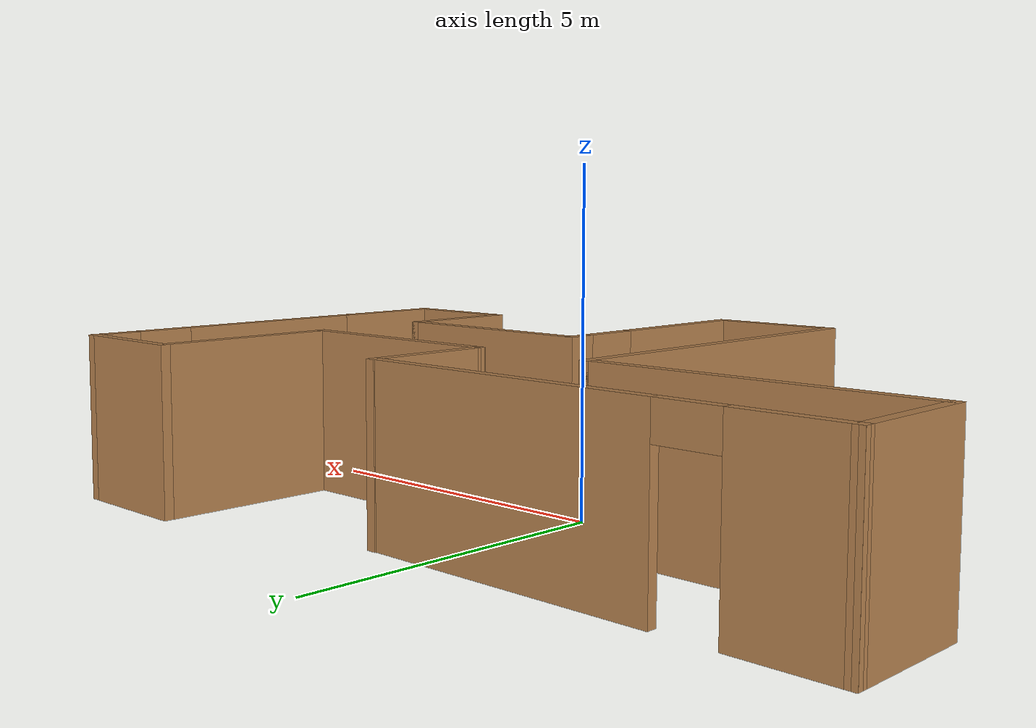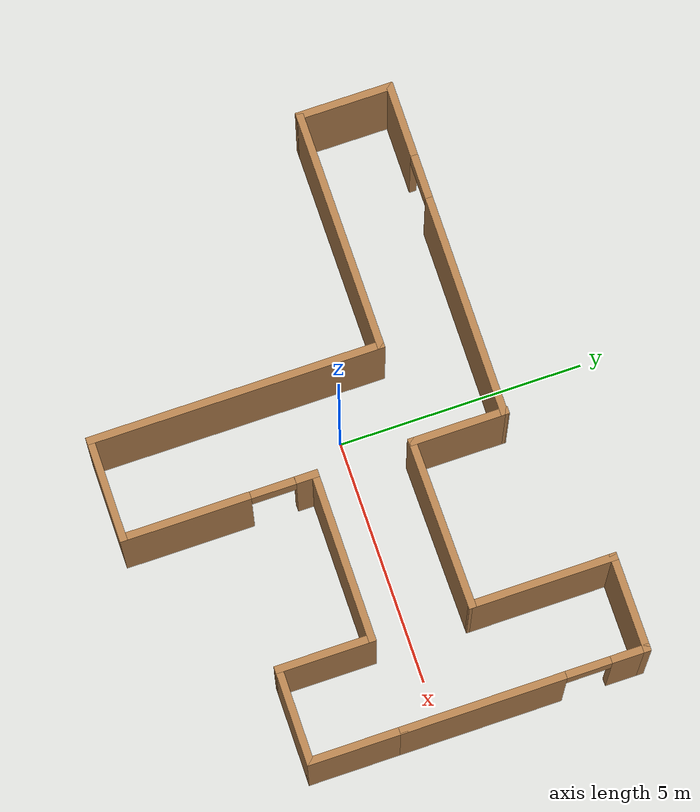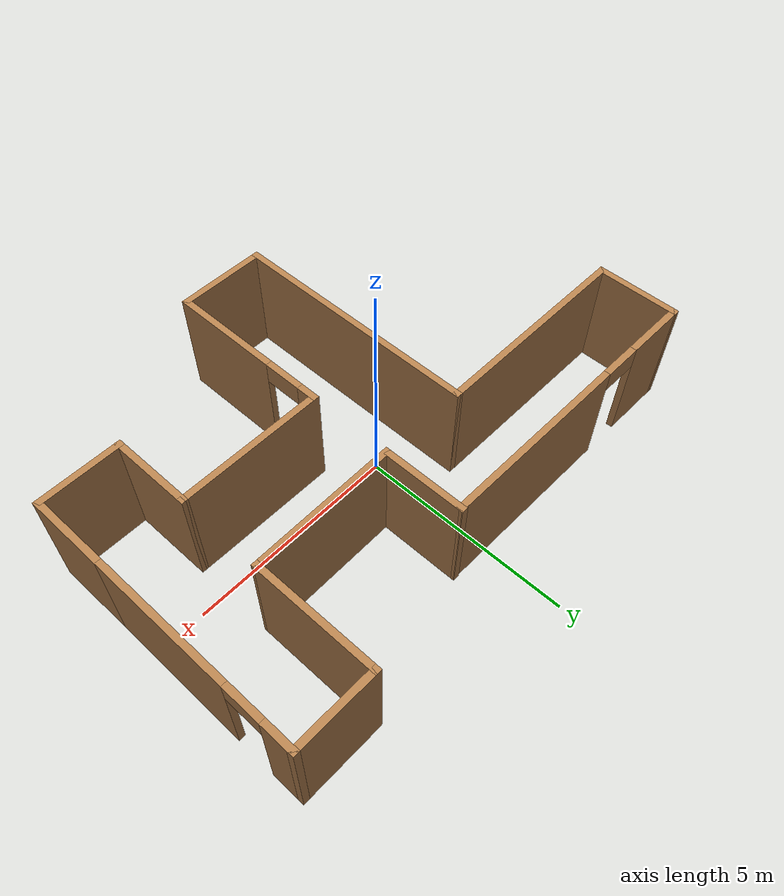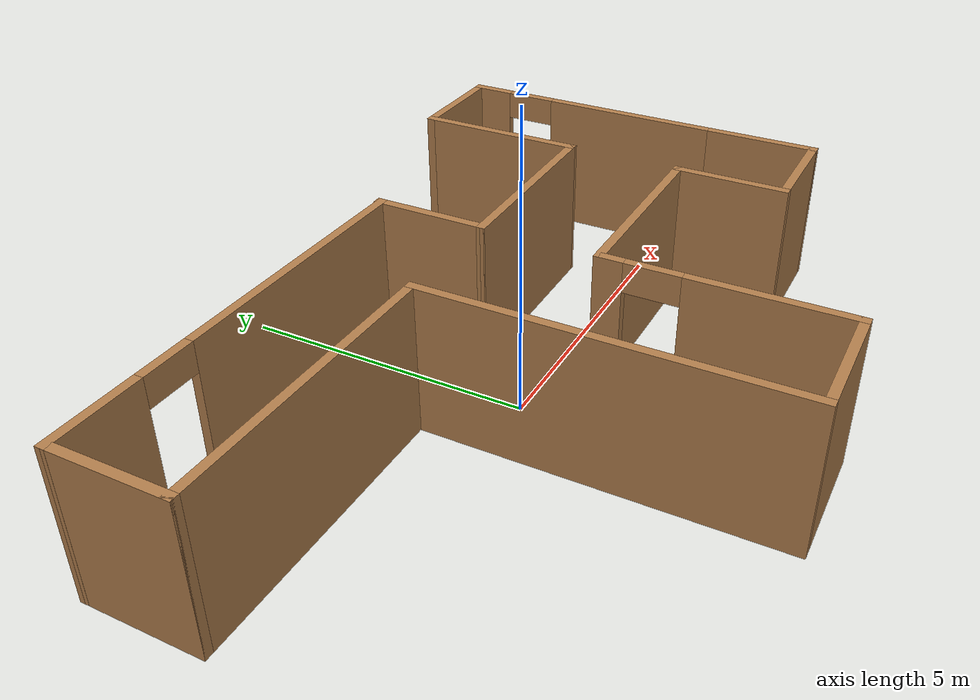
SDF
<?xml version='1.0'?>
<sdf version='1.7'>
  <model name='carehome'>
    <pose>0.10231 -0.318 0 0 -0 0</pose>
    <link name='Wall_0'>
      <collision name='Wall_0_Collision'>
        <geometry>
          <box>
            <size>2 0.15 2.5</size>
          </box>
        </geometry>
        <pose>0 0 1.25 0 -0 0</pose>
      </collision>
      <visual name='Wall_0_Visual'>
        <pose>0 0 1.25 0 -0 0</pose>
        <geometry>
          <box>
            <size>2 0.15 2.5</size>
          </box>
        </geometry>
        <material>
          <script>
            <uri>file://media/materials/scripts/gazebo.material</uri>
            <name>Gazebo/Wood</name>
          </script>
          <ambient>1 1 1 1</ambient>
        </material>
        <meta>
          <layer>0</layer>
        </meta>
      </visual>
      <pose>-0.09981 -4.35 0 0 -0 0</pose>
    </link>
    <link name='Wall_1'>
      <pose>0.82519 -2.425 0 0 -0 1.5708</pose>
      <visual name='Wall_1_Visual_0'>
        <pose>-0.685448 0 1.25 0 -0 0</pose>
        <geometry>
          <box>
            <size>2.6291 0.15 2.5</size>
          </box>
        </geometry>
        <material>
          <script>
            <uri>file://media/materials/scripts/gazebo.material</uri>
            <name>Gazebo/Wood</name>
          </script>
          <ambient>1 1 1 1</ambient>
        </material>
        <meta>
          <layer>0</layer>
        </meta>
      </visual>
      <collision name='Wall_1_Collision_0'>
        <geometry>
          <box>
            <size>2.6291 0.15 2.5</size>
          </box>
        </geometry>
        <pose>-0.685448 0 1.25 0 -0 0</pose>
      </collision>
      <visual name='Wall_1_Visual_1'>
        <pose>1.76455 0 1.25 0 -0 0</pose>
        <geometry>
          <box>
            <size>0.470896 0.15 2.5</size>
          </box>
        </geometry>
        <material>
          <script>
            <uri>file://media/materials/scripts/gazebo.material</uri>
            <name>Gazebo/Wood</name>
          </script>
          <ambient>1 1 1 1</ambient>
        </material>
        <meta>
          <layer>0</layer>
        </meta>
      </visual>
      <collision name='Wall_1_Collision_1'>
        <geometry>
          <box>
            <size>0.470896 0.15 2.5</size>
          </box>
        </geometry>
        <pose>1.76455 0 1.25 0 -0 0</pose>
      </collision>
      <visual name='Wall_1_Visual_2'>
        <pose>1.0791 0 2.25 0 -0 0</pose>
        <geometry>
          <box>
            <size>0.9 0.15 0.5</size>
          </box>
        </geometry>
        <material>
          <script>
            <uri>file://media/materials/scripts/gazebo.material</uri>
            <name>Gazebo/Wood</name>
          </script>
          <ambient>1 1 1 1</ambient>
        </material>
        <meta>
          <layer>0</layer>
        </meta>
      </visual>
      <collision name='Wall_1_Collision_2'>
        <geometry>
          <box>
            <size>0.9 0.15 0.5</size>
          </box>
        </geometry>
        <pose>1.0791 0 2.25 0 -0 0</pose>
      </collision>
    </link>
    <link name='Wall_10'>
      <collision name='Wall_10_Collision'>
        <geometry>
          <box>
            <size>3 0.15 2.5</size>
          </box>
        </geometry>
        <pose>0 0 1.25 0 -0 0</pose>
      </collision>
      <visual name='Wall_10_Visual'>
        <pose>0 0 1.25 0 -0 0</pose>
        <geometry>
          <box>
            <size>3 0.15 2.5</size>
          </box>
        </geometry>
        <material>
          <script>
            <uri>file://media/materials/scripts/gazebo.material</uri>
            <name>Gazebo/Wood</name>
          </script>
          <ambient>1 1 1 1</ambient>
        </material>
        <meta>
          <layer>0</layer>
        </meta>
      </visual>
      <pose>4.17519 2.925 0 0 -0 -1.5708</pose>
    </link>
    <link name='Wall_11'>
      <collision name='Wall_11_Collision'>
        <geometry>
          <box>
            <size>3.5 0.15 2.5</size>
          </box>
        </geometry>
        <pose>0 0 1.25 0 -0 0</pose>
      </collision>
      <visual name='Wall_11_Visual'>
        <pose>0 0 1.25 0 -0 0</pose>
        <geometry>
          <box>
            <size>3.5 0.15 2.5</size>
          </box>
        </geometry>
        <material>
          <script>
            <uri>file://media/materials/scripts/gazebo.material</uri>
            <name>Gazebo/Wood</name>
          </script>
          <ambient>1 1 1 1</ambient>
        </material>
        <meta>
          <layer>0</layer>
        </meta>
      </visual>
      <pose>2.50019 1.47989 0 0 -0 -3.12959</pose>
    </link>
    <link name='Wall_12'>
      <collision name='Wall_12_Collision'>
        <geometry>
          <box>
            <size>2 0.15 2.5</size>
          </box>
        </geometry>
        <pose>0 0 1.25 0 -0 0</pose>
      </collision>
      <visual name='Wall_12_Visual'>
        <pose>0 0 1.25 0 -0 0</pose>
        <geometry>
          <box>
            <size>2 0.15 2.5</size>
          </box>
        </geometry>
        <material>
          <script>
            <uri>file://media/materials/scripts/gazebo.material</uri>
            <name>Gazebo/Wood</name>
          </script>
          <ambient>1 1 1 1</ambient>
        </material>
        <meta>
          <layer>0</layer>
        </meta>
      </visual>
      <pose>0.82519 2.40489 0 0 -0 1.5708</pose>
    </link>
    <link name='Wall_13'>
      <pose>-2.59981 3.32989 0 0 -0 3.13572</pose>
      <visual name='Wall_13_Visual_0'>
        <pose>-1.22377 0 1.25 0 -0 0</pose>
        <geometry>
          <box>
            <size>4.55246 0.15 2.5</size>
          </box>
        </geometry>
        <material>
          <script>
            <uri>file://media/materials/scripts/gazebo.material</uri>
            <name>Gazebo/Wood</name>
          </script>
          <ambient>1 1 1 1</ambient>
        </material>
        <meta>
          <layer>0</layer>
        </meta>
      </visual>
      <collision name='Wall_13_Collision_0'>
        <geometry>
          <box>
            <size>4.55246 0.15 2.5</size>
          </box>
        </geometry>
        <pose>-1.22377 0 1.25 0 -0 0</pose>
      </collision>
      <visual name='Wall_13_Visual_1'>
        <pose>2.72623 0 1.25 0 -0 0</pose>
        <geometry>
          <box>
            <size>1.54754 0.15 2.5</size>
          </box>
        </geometry>
        <material>
          <script>
            <uri>file://media/materials/scripts/gazebo.material</uri>
            <name>Gazebo/Wood</name>
          </script>
          <ambient>1 1 1 1</ambient>
        </material>
        <meta>
          <layer>0</layer>
        </meta>
      </visual>
      <collision name='Wall_13_Collision_1'>
        <geometry>
          <box>
            <size>1.54754 0.15 2.5</size>
          </box>
        </geometry>
        <pose>2.72623 0 1.25 0 -0 0</pose>
      </collision>
      <visual name='Wall_13_Visual_2'>
        <pose>1.50246 0 2.25 0 -0 0</pose>
        <geometry>
          <box>
            <size>0.9 0.15 0.5</size>
          </box>
        </geometry>
        <material>
          <script>
            <uri>file://media/materials/scripts/gazebo.material</uri>
            <name>Gazebo/Wood</name>
          </script>
          <ambient>1 1 1 1</ambient>
        </material>
        <meta>
          <layer>0</layer>
        </meta>
      </visual>
      <collision name='Wall_13_Collision_2'>
        <geometry>
          <box>
            <size>0.9 0.15 0.5</size>
          </box>
        </geometry>
        <pose>1.50246 0 2.25 0 -0 0</pose>
      </collision>
    </link>
    <link name='Wall_14'>
      <collision name='Wall_14_Collision'>
        <geometry>
          <box>
            <size>2 0.15 2.5</size>
          </box>
        </geometry>
        <pose>0 0 1.25 0 -0 0</pose>
      </collision>
      <visual name='Wall_14_Visual'>
        <pose>0 0 1.25 0 -0 0</pose>
        <geometry>
          <box>
            <size>2 0.15 2.5</size>
          </box>
        </geometry>
        <material>
          <script>
            <uri>file://media/materials/scripts/gazebo.material</uri>
            <name>Gazebo/Wood</name>
          </script>
          <ambient>1 1 1 1</ambient>
        </material>
        <meta>
          <layer>0</layer>
        </meta>
      </visual>
      <pose>-6.02481 2.425 0 0 -0 -1.5708</pose>
    </link>
    <link name='Wall_15'>
      <collision name='Wall_15_Collision'>
        <geometry>
          <box>
            <size>5 0.15 2.5</size>
          </box>
        </geometry>
        <pose>0 0 1.25 0 -0 0</pose>
      </collision>
      <visual name='Wall_15_Visual'>
        <pose>0 0 1.25 0 -0 0</pose>
        <geometry>
          <box>
            <size>5 0.15 2.5</size>
          </box>
        </geometry>
        <material>
          <script>
            <uri>file://media/materials/scripts/gazebo.material</uri>
            <name>Gazebo/Wood</name>
          </script>
          <ambient>1 1 1 1</ambient>
        </material>
        <meta>
          <layer>0</layer>
        </meta>
      </visual>
      <pose>-3.59981 1.5 0 0 -0 0</pose>
    </link>
    <link name='Wall_16'>
      <collision name='Wall_16_Collision'>
        <geometry>
          <box>
            <size>6 0.15 2.5</size>
          </box>
        </geometry>
        <pose>0 0 1.25 0 -0 0</pose>
      </collision>
      <visual name='Wall_16_Visual'>
        <pose>0 0 1.25 0 -0 0</pose>
        <geometry>
          <box>
            <size>6 0.15 2.5</size>
          </box>
        </geometry>
        <material>
          <script>
            <uri>file://media/materials/scripts/gazebo.material</uri>
            <name>Gazebo/Wood</name>
          </script>
          <ambient>1 1 1 1</ambient>
        </material>
        <meta>
          <layer>0</layer>
        </meta>
      </visual>
      <pose>-1.17481 -1.425 0 0 -0 -1.5708</pose>
    </link>
    <link name='Wall_2'>
      <collision name='Wall_2_Collision'>
        <geometry>
          <box>
            <size>3.5 0.15 2.5</size>
          </box>
        </geometry>
        <pose>0 0 1.25 0 -0 0</pose>
      </collision>
      <visual name='Wall_2_Visual'>
        <pose>0 0 1.25 0 -0 0</pose>
        <geometry>
          <box>
            <size>3.5 0.15 2.5</size>
          </box>
        </geometry>
        <material>
          <script>
            <uri>file://media/materials/scripts/gazebo.material</uri>
            <name>Gazebo/Wood</name>
          </script>
          <ambient>1 1 1 1</ambient>
        </material>
        <meta>
          <layer>0</layer>
        </meta>
      </visual>
      <pose>2.50019 -0.5 0 0 -0 0</pose>
    </link>
    <link name='Wall_3'>
      <collision name='Wall_3_Collision'>
        <geometry>
          <box>
            <size>2 0.15 2.5</size>
          </box>
        </geometry>
        <pose>0 0 1.25 0 -0 0</pose>
      </collision>
      <visual name='Wall_3_Visual'>
        <pose>0 0 1.25 0 -0 0</pose>
        <geometry>
          <box>
            <size>2 0.15 2.5</size>
          </box>
        </geometry>
        <material>
          <script>
            <uri>file://media/materials/scripts/gazebo.material</uri>
            <name>Gazebo/Wood</name>
          </script>
          <ambient>1 1 1 1</ambient>
        </material>
        <meta>
          <layer>0</layer>
        </meta>
      </visual>
      <pose>4.17519 -1.425 0 0 -0 -1.5708</pose>
    </link>
    <link name='Wall_4'>
      <collision name='Wall_4_Collision'>
        <geometry>
          <box>
            <size>2 0.15 2.5</size>
          </box>
        </geometry>
        <pose>0 0 1.25 0 -0 0</pose>
      </collision>
      <visual name='Wall_4_Visual'>
        <pose>0 0 1.25 0 -0 0</pose>
        <geometry>
          <box>
            <size>2 0.15 2.5</size>
          </box>
        </geometry>
        <material>
          <script>
            <uri>file://media/materials/scripts/gazebo.material</uri>
            <name>Gazebo/Wood</name>
          </script>
          <ambient>1 1 1 1</ambient>
        </material>
        <meta>
          <layer>0</layer>
        </meta>
      </visual>
      <pose>5.10019 -2.35 0 0 -0 0</pose>
    </link>
    <link name='Wall_5'>
      <collision name='Wall_5_Collision'>
        <geometry>
          <box>
            <size>2 0.15 2.5</size>
          </box>
        </geometry>
        <pose>0 0 1.25 0 -0 0</pose>
      </collision>
      <visual name='Wall_5_Visual'>
        <pose>0 0 1.25 0 -0 0</pose>
        <geometry>
          <box>
            <size>2 0.15 2.5</size>
          </box>
        </geometry>
        <material>
          <script>
            <uri>file://media/materials/scripts/gazebo.material</uri>
            <name>Gazebo/Wood</name>
          </script>
          <ambient>1 1 1 1</ambient>
        </material>
        <meta>
          <layer>0</layer>
        </meta>
      </visual>
      <pose>6.02519 -1.425 0 0 -0 1.5708</pose>
    </link>
    <link name='Wall_8'>
      <pose>6.02519 1.925 0 0 -0 1.5708</pose>
      <visual name='Wall_8_Visual_0'>
        <pose>-0.842073 0 1.25 0 -0 0</pose>
        <geometry>
          <box>
            <size>3.31585 0.15 2.5</size>
          </box>
        </geometry>
        <material>
          <script>
            <uri>file://media/materials/scripts/gazebo.material</uri>
            <name>Gazebo/Wood</name>
          </script>
          <ambient>1 1 1 1</ambient>
        </material>
        <meta>
          <layer>0</layer>
        </meta>
      </visual>
      <collision name='Wall_8_Collision_0'>
        <geometry>
          <box>
            <size>3.31585 0.15 2.5</size>
          </box>
        </geometry>
        <pose>-0.842073 0 1.25 0 -0 0</pose>
      </collision>
      <visual name='Wall_8_Visual_1'>
        <pose>2.10793 0 1.25 0 -0 0</pose>
        <geometry>
          <box>
            <size>0.784146 0.15 2.5</size>
          </box>
        </geometry>
        <material>
          <script>
            <uri>file://media/materials/scripts/gazebo.material</uri>
            <name>Gazebo/Wood</name>
          </script>
          <ambient>1 1 1 1</ambient>
        </material>
        <meta>
          <layer>0</layer>
        </meta>
      </visual>
      <collision name='Wall_8_Collision_1'>
        <geometry>
          <box>
            <size>0.784146 0.15 2.5</size>
          </box>
        </geometry>
        <pose>2.10793 0 1.25 0 -0 0</pose>
      </collision>
      <visual name='Wall_8_Visual_2'>
        <pose>1.26585 0 2.25 0 -0 0</pose>
        <geometry>
          <box>
            <size>0.9 0.15 0.5</size>
          </box>
        </geometry>
        <material>
          <script>
            <uri>file://media/materials/scripts/gazebo.material</uri>
            <name>Gazebo/Wood</name>
          </script>
          <ambient>1 1 1 1</ambient>
        </material>
        <meta>
          <layer>0</layer>
        </meta>
      </visual>
      <collision name='Wall_8_Collision_2'>
        <geometry>
          <box>
            <size>0.9 0.15 0.5</size>
          </box>
        </geometry>
        <pose>1.26585 0 2.25 0 -0 0</pose>
      </collision>
    </link>
    <link name='Wall_9'>
      <collision name='Wall_9_Collision'>
        <geometry>
          <box>
            <size>2 0.15 2.5</size>
          </box>
        </geometry>
        <pose>0 0 1.25 0 -0 0</pose>
      </collision>
      <visual name='Wall_9_Visual'>
        <pose>0 0 1.25 0 -0 0</pose>
        <geometry>
          <box>
            <size>2 0.15 2.5</size>
          </box>
        </geometry>
        <material>
          <script>
            <uri>file://media/materials/scripts/gazebo.material</uri>
            <name>Gazebo/Wood</name>
          </script>
          <ambient>1 1 1 1</ambient>
        </material>
        <meta>
          <layer>0</layer>
        </meta>
      </visual>
      <pose>5.10019 4.35 0 0 -0 3.14159</pose>
    </link>
    <static>1</static>
  </model>
</sdf>
